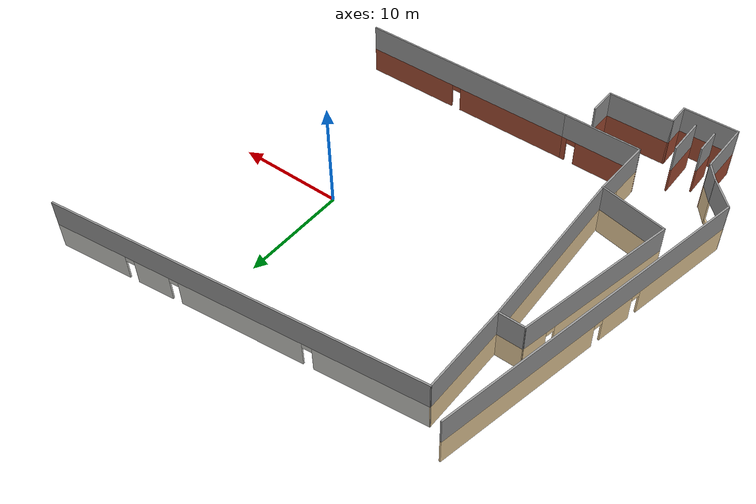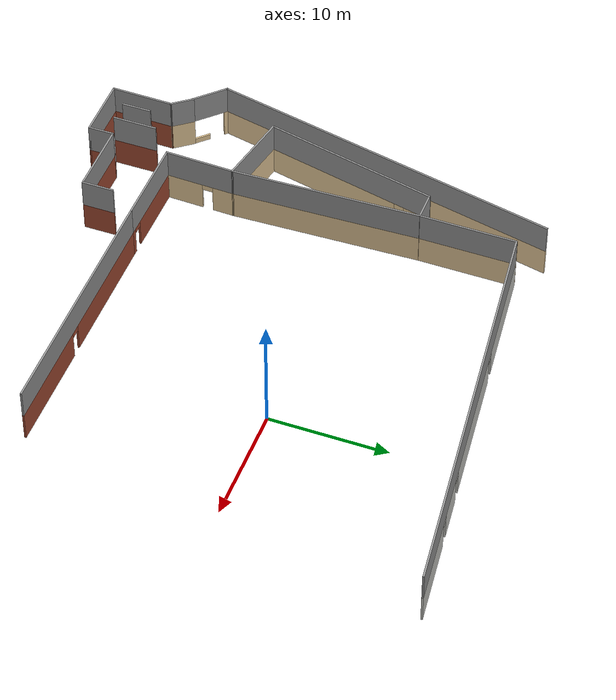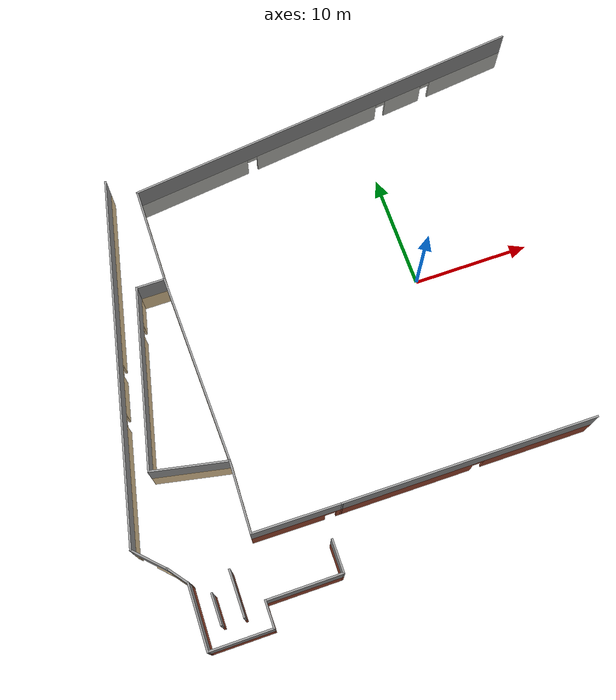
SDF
<sdf version="1.6">
 <model name="FokusFloor2-colour">
  <pose>2.32223 1.2425 0 0 -0 0</pose>
  <link name="Wall_10">
   <pose>-5.39207 14.1564 0 0 -0 -3.02197</pose>
   <visual name="Wall_10_Visual_0">
    <pose>-13.8748 0 1.25 0 -0 0</pose>
    <geometry><box><size>7.02297 0.15 2.5</size></box></geometry>
    <material>
     <script><uri>file://media/materials/scripts/gazebo.material</uri><name>Gazebo/CeilingTiled</name></script>
     <ambient>1 1 1 1</ambient>
    </material>
    <meta><layer>0</layer></meta>
   </visual>
   <collision name="Wall_10_Collision_0">
    <geometry><box><size>7.02297 0.15 2.5</size></box></geometry>
    <pose>-13.8748 0 1.25 0 -0 0</pose>
   </collision>
   <visual name="Wall_10_Visual_1">
    <pose>-7.70986 0 1.25 0 -0 0</pose>
    <geometry><box><size>3.50692 0.15 2.5</size></box></geometry>
    <material>
     <script><uri>file://media/materials/scripts/gazebo.material</uri><name>Gazebo/CeilingTiled</name></script>
     <ambient>1 1 1 1</ambient>
    </material>
    <meta><layer>0</layer></meta>
   </visual>
   <collision name="Wall_10_Collision_1">
    <geometry><box><size>3.50692 0.15 2.5</size></box></geometry>
    <pose>-7.70986 0 1.25 0 -0 0</pose>
   </collision>
   <visual name="Wall_10_Visual_2">
    <pose>0.711653 0 1.25 0 -0 0</pose>
    <geometry><box><size>11.5361 0.15 2.5</size></box></geometry>
    <material>
     <script><uri>file://media/materials/scripts/gazebo.material</uri><name>Gazebo/CeilingTiled</name></script>
     <ambient>1 1 1 1</ambient>
    </material>
    <meta><layer>0</layer></meta>
   </visual>
   <collision name="Wall_10_Collision_2">
    <geometry><box><size>11.5361 0.15 2.5</size></box></geometry>
    <pose>0.711653 0 1.25 0 -0 0</pose>
   </collision>
   <visual name="Wall_10_Visual_3">
    <pose>12.383 0 1.25 0 -0 0</pose>
    <geometry><box><size>10.0066 0.15 2.5</size></box></geometry>
    <material>
     <script><uri>file://media/materials/scripts/gazebo.material</uri><name>Gazebo/CeilingTiled</name></script>
     <ambient>1 1 1 1</ambient>
    </material>
    <meta><layer>0</layer></meta>
   </visual>
   <collision name="Wall_10_Collision_3">
    <geometry><box><size>10.0066 0.15 2.5</size></box></geometry>
    <pose>12.383 0 1.25 0 -0 0</pose>
   </collision>
   <visual name="Wall_10_Visual_4">
    <pose>-9.91332 0 2.25 0 -0 0</pose>
    <geometry><box><size>0.9 0.15 0.5</size></box></geometry>
    <material>
     <script><uri>file://media/materials/scripts/gazebo.material</uri><name>Gazebo/CeilingTiled</name></script>
     <ambient>1 1 1 1</ambient>
    </material>
    <meta><layer>0</layer></meta>
   </visual>
   <collision name="Wall_10_Collision_4">
    <geometry><box><size>0.9 0.15 0.5</size></box></geometry>
    <pose>-9.91332 0 2.25 0 -0 0</pose>
   </collision>
   <visual name="Wall_10_Visual_5">
    <pose>-5.5064 0 2.25 0 -0 0</pose>
    <geometry><box><size>0.9 0.15 0.5</size></box></geometry>
    <material>
     <script><uri>file://media/materials/scripts/gazebo.material</uri><name>Gazebo/CeilingTiled</name></script>
     <ambient>1 1 1 1</ambient>
    </material>
    <meta><layer>0</layer></meta>
   </visual>
   <collision name="Wall_10_Collision_5">
    <geometry><box><size>0.9 0.15 0.5</size></box></geometry>
    <pose>-5.5064 0 2.25 0 -0 0</pose>
   </collision>
   <visual name="Wall_10_Visual_6">
    <pose>6.92971 0 2.25 0 -0 0</pose>
    <geometry><box><size>0.9 0.15 0.5</size></box></geometry>
    <material>
     <script><uri>file://media/materials/scripts/gazebo.material</uri><name>Gazebo/CeilingTiled</name></script>
     <ambient>1 1 1 1</ambient>
    </material>
    <meta><layer>0</layer></meta>
   </visual>
   <collision name="Wall_10_Collision_6">
    <geometry><box><size>0.9 0.15 0.5</size></box></geometry>
    <pose>6.92971 0 2.25 0 -0 0</pose>
   </collision>
  </link>
  <link name="Wall_100">
   <collision name="Wall_100_Collision">
    <geometry><box><size>2.06017 0.15 2.5</size></box></geometry>
    <pose>0 0 1.25 0 -0 0</pose>
   </collision>
   <visual name="Wall_100_Visual">
    <pose>0 0 1.25 0 -0 0</pose>
    <geometry><box><size>2.06017 0.15 2.5</size></box></geometry>
    <material>
     <script><uri>file://media/materials/scripts/gazebo.material</uri><name>Gazebo/Grey</name></script>
     <ambient>1 1 1 1</ambient>
    </material>
    <meta><layer>1</layer></meta>
   </visual>
   <pose>-28.4394 -18.8771 2.5 0 -0 -0.909626</pose>
  </link>
  <link name="Wall_101">
   <collision name="Wall_101_Collision">
    <geometry><box><size>8.22358 0.15 2.5</size></box></geometry>
    <pose>0 0 1.25 0 -0 0</pose>
   </collision>
   <visual name="Wall_101_Visual">
    <pose>0 0 1.25 0 -0 0</pose>
    <geometry><box><size>8.22358 0.15 2.5</size></box></geometry>
    <material>
     <script><uri>file://media/materials/scripts/gazebo.material</uri><name>Gazebo/Grey</name></script>
     <ambient>1 1 1 1</ambient>
    </material>
    <meta><layer>1</layer></meta>
   </visual>
   <pose>-22.6059 8.05384 2.5 0 -0 -1.57731</pose>
  </link>
  <link name="Wall_102">
   <collision name="Wall_102_Collision">
    <geometry><box><size>2.5 0.15 2.5</size></box></geometry>
    <pose>0 0 1.25 0 -0 0</pose>
   </collision>
   <visual name="Wall_102_Visual">
    <pose>0 0 1.25 0 -0 0</pose>
    <geometry><box><size>2.5 0.15 2.5</size></box></geometry>
    <material>
     <script><uri>file://media/materials/scripts/gazebo.material</uri><name>Gazebo/Grey</name></script>
     <ambient>1 1 1 1</ambient>
    </material>
    <meta><layer>1</layer></meta>
   </visual>
   <pose>-23.8072 3.99083 2.5 0 -0 3.14159</pose>
  </link>
  <link name="Wall_103">
   <collision name="Wall_103_Collision">
    <geometry><box><size>15.1732 0.15 2.5</size></box></geometry>
    <pose>0 0 1.25 0 -0 0</pose>
   </collision>
   <visual name="Wall_103_Visual">
    <pose>0 0 1.25 0 -0 0</pose>
    <geometry><box><size>15.1732 0.15 2.5</size></box></geometry>
    <material>
     <script><uri>file://media/materials/scripts/gazebo.material</uri><name>Gazebo/Grey</name></script>
     <ambient>1 1 1 1</ambient>
    </material>
    <meta><layer>1</layer></meta>
   </visual>
   <pose>-26.6296 -3.33792 2.5 0 -0 -1.79189</pose>
  </link>
  <link name="Wall_104">
   <collision name="Wall_104_Collision">
    <geometry><box><size>6.39727 0.15 2.5</size></box></geometry>
    <pose>0 0 1.25 0 -0 0</pose>
   </collision>
   <visual name="Wall_104_Visual">
    <pose>0 0 1.25 0 -0 0</pose>
    <geometry><box><size>6.39727 0.15 2.5</size></box></geometry>
    <material>
     <script><uri>file://media/materials/scripts/gazebo.material</uri><name>Gazebo/Grey</name></script>
     <ambient>1 1 1 1</ambient>
    </material>
    <meta><layer>1</layer></meta>
   </visual>
   <pose>-25.2124 -11.2983 2.5 0 -0 -0.195012</pose>
  </link>
  <link name="Wall_105">
   <collision name="Wall_105_Collision">
    <geometry><box><size>5.95032 0.15 2.5</size></box></geometry>
    <pose>0 0 1.25 0 -0 0</pose>
   </collision>
   <visual name="Wall_105_Visual">
    <pose>0 0 1.25 0 -0 0</pose>
    <geometry><box><size>5.95032 0.15 2.5</size></box></geometry>
    <material>
     <script><uri>file://media/materials/scripts/gazebo.material</uri><name>Gazebo/Grey</name></script>
     <ambient>1 1 1 1</ambient>
    </material>
    <meta><layer>1</layer></meta>
   </visual>
   <pose>-22.2401 -14.776 2.5 0 -0 -1.60254</pose>
  </link>
  <link name="Wall_106">
   <collision name="Wall_106_Collision">
    <geometry><box><size>7.41764 0.15 2.5</size></box></geometry>
    <pose>0 0 1.25 0 -0 0</pose>
   </collision>
   <visual name="Wall_106_Visual">
    <pose>0 0 1.25 0 -0 0</pose>
    <geometry><box><size>7.41764 0.15 2.5</size></box></geometry>
    <material>
     <script><uri>file://media/materials/scripts/gazebo.material</uri><name>Gazebo/Grey</name></script>
     <ambient>1 1 1 1</ambient>
    </material>
    <meta><layer>1</layer></meta>
   </visual>
   <pose>-18.6985 -17.7367 2.5 0 -0 -0.009841</pose>
  </link>
  <link name="Wall_113">
   <collision name="Wall_113_Collision">
    <geometry><box><size>5.31467 0.15 2.5</size></box></geometry>
    <pose>0 0 1.25 0 -0 0</pose>
   </collision>
   <visual name="Wall_113_Visual">
    <pose>0 0 1.25 0 -0 0</pose>
    <geometry><box><size>5.31467 0.15 2.5</size></box></geometry>
    <material>
     <script><uri>file://media/materials/scripts/gazebo.material</uri><name>Gazebo/Grey</name></script>
     <ambient>1 1 1 1</ambient>
    </material>
    <meta><layer>1</layer></meta>
   </visual>
   <pose>-27.8944 -22.2129 2.5 0 -0 -1.58683</pose>
  </link>
  <link name="Wall_114">
   <collision name="Wall_114_Collision">
    <geometry><box><size>5.25 0.15 2.5</size></box></geometry>
    <pose>0 0 1.25 0 -0 0</pose>
   </collision>
   <visual name="Wall_114_Visual">
    <pose>0 0 1.25 0 -0 0</pose>
    <geometry><box><size>5.25 0.15 2.5</size></box></geometry>
    <material>
     <script><uri>file://media/materials/scripts/gazebo.material</uri><name>Gazebo/Grey</name></script>
     <ambient>1 1 1 1</ambient>
    </material>
    <meta><layer>1</layer></meta>
   </visual>
   <pose>-25.3858 -24.7949 2.5 0 -0 0</pose>
  </link>
  <link name="Wall_115">
   <collision name="Wall_115_Collision">
    <geometry><box><size>2.25 0.15 2.5</size></box></geometry>
    <pose>0 0 1.25 0 -0 0</pose>
   </collision>
   <visual name="Wall_115_Visual">
    <pose>0 0 1.25 0 -0 0</pose>
    <geometry><box><size>2.25 0.15 2.5</size></box></geometry>
    <material>
     <script><uri>file://media/materials/scripts/gazebo.material</uri><name>Gazebo/Grey</name></script>
     <ambient>1 1 1 1</ambient>
    </material>
    <meta><layer>1</layer></meta>
   </visual>
   <pose>-22.8358 -23.7449 2.5 0 -0 1.5708</pose>
  </link>
  <link name="Wall_116">
   <collision name="Wall_116_Collision">
    <geometry><box><size>6.29548 0.15 2.5</size></box></geometry>
    <pose>0 0 1.25 0 -0 0</pose>
   </collision>
   <visual name="Wall_116_Visual">
    <pose>0 0 1.25 0 -0 0</pose>
    <geometry><box><size>6.29548 0.15 2.5</size></box></geometry>
    <material>
     <script><uri>file://media/materials/scripts/gazebo.material</uri><name>Gazebo/Grey</name></script>
     <ambient>1 1 1 1</ambient>
    </material>
    <meta><layer>1</layer></meta>
   </visual>
   <pose>-19.7631 -22.6949 2.5 0 -0 0</pose>
  </link>
  <link name="Wall_117">
   <collision name="Wall_117_Collision">
    <geometry><box><size>2.75 0.15 2.5</size></box></geometry>
    <pose>0 0 1.25 0 -0 0</pose>
   </collision>
   <visual name="Wall_117_Visual">
    <pose>0 0 1.25 0 -0 0</pose>
    <geometry><box><size>2.75 0.15 2.5</size></box></geometry>
    <material>
     <script><uri>file://media/materials/scripts/gazebo.material</uri><name>Gazebo/Grey</name></script>
     <ambient>1 1 1 1</ambient>
    </material>
    <meta><layer>1</layer></meta>
   </visual>
   <pose>-16.6903 -21.3949 2.5 0 -0 1.5708</pose>
  </link>
  <link name="Wall_118">
   <collision name="Wall_118_Collision">
    <geometry><box><size>3.75 0.15 2.5</size></box></geometry>
    <pose>0 0 1.25 0 -0 0</pose>
   </collision>
   <visual name="Wall_118_Visual">
    <pose>0 0 1.25 0 -0 0</pose>
    <geometry><box><size>3.75 0.15 2.5</size></box></geometry>
    <material>
     <script><uri>file://media/materials/scripts/gazebo.material</uri><name>Gazebo/Grey</name></script>
     <ambient>1 1 1 1</ambient>
    </material>
    <meta><layer>1</layer></meta>
   </visual>
   <pose>-24.6642 -21.5184 2.5 0 -0 -1.5708</pose>
  </link>
  <link name="Wall_119">
   <collision name="Wall_119_Collision">
    <geometry><box><size>2.5 0.15 2.5</size></box></geometry>
    <pose>0 0 1.25 0 -0 0</pose>
   </collision>
   <visual name="Wall_119_Visual">
    <pose>0 0 1.25 0 -0 0</pose>
    <geometry><box><size>2.5 0.15 2.5</size></box></geometry>
    <material>
     <script><uri>file://media/materials/scripts/gazebo.material</uri><name>Gazebo/Grey</name></script>
     <ambient>1 1 1 1</ambient>
    </material>
    <meta><layer>1</layer></meta>
   </visual>
   <pose>-26.4339 -22.1179 2.5 0 -0 1.5708</pose>
  </link>
  <link name="Wall_124">
   <collision name="Wall_124_Collision">
    <geometry><box><size>16.0255 0.15 2.5</size></box></geometry>
    <pose>0 0 1.25 0 -0 0</pose>
   </collision>
   <visual name="Wall_124_Visual">
    <pose>0 0 1.25 0 -0 0</pose>
    <geometry><box><size>16.0255 0.15 2.5</size></box></geometry>
    <material>
     <script><uri>file://media/materials/scripts/gazebo.material</uri><name>Gazebo/Grey</name></script>
     <ambient>1 1 1 1</ambient>
    </material>
    <meta><layer>1</layer></meta>
   </visual>
   <pose>-22.3901 -3.94322 2.5 0 -0 -1.54029</pose>
  </link>
  <link name="Wall_30">
   <pose>-28.0237 -1.02056 0 0 -0 -1.78183</pose>
   <visual name="Wall_30_Visual_0">
    <pose>-7.65922 0 1.25 0 -0 0</pose>
    <geometry><box><size>15.3295 0.15 2.5</size></box></geometry>
    <material>
     <script><uri>file://media/materials/scripts/gazebo.material</uri><name>Gazebo/Grey</name></script>
     <ambient>0.921569 0.807843 0.615686 1</ambient>
    </material>
    <meta><layer>0</layer></meta>
   </visual>
   <collision name="Wall_30_Collision_0">
    <geometry><box><size>15.3295 0.15 2.5</size></box></geometry>
    <pose>-7.65922 0 1.25 0 -0 0</pose>
   </collision>
   <visual name="Wall_30_Visual_1">
    <pose>2.55878 0 1.25 0 -0 0</pose>
    <geometry><box><size>3.30655 0.15 2.5</size></box></geometry>
    <material>
     <script><uri>file://media/materials/scripts/gazebo.material</uri><name>Gazebo/Grey</name></script>
     <ambient>0.921569 0.807843 0.615686 1</ambient>
    </material>
    <meta><layer>0</layer></meta>
   </visual>
   <collision name="Wall_30_Collision_1">
    <geometry><box><size>3.30655 0.15 2.5</size></box></geometry>
    <pose>2.55878 0 1.25 0 -0 0</pose>
   </collision>
   <visual name="Wall_30_Visual_2">
    <pose>10.218 0 1.25 0 -0 0</pose>
    <geometry><box><size>10.2119 0.15 2.5</size></box></geometry>
    <material>
     <script><uri>file://media/materials/scripts/gazebo.material</uri><name>Gazebo/Grey</name></script>
     <ambient>0.921569 0.807843 0.615686 1</ambient>
    </material>
    <meta><layer>0</layer></meta>
   </visual>
   <collision name="Wall_30_Collision_2">
    <geometry><box><size>10.2119 0.15 2.5</size></box></geometry>
    <pose>10.218 0 1.25 0 -0 0</pose>
   </collision>
   <visual name="Wall_30_Visual_3">
    <pose>0.455508 0 2.25 0 -0 0</pose>
    <geometry><box><size>0.9 0.15 0.5</size></box></geometry>
    <material>
     <script><uri>file://media/materials/scripts/gazebo.material</uri><name>Gazebo/Grey</name></script>
     <ambient>0.921569 0.807843 0.615686 1</ambient>
    </material>
    <meta><layer>0</layer></meta>
   </visual>
   <collision name="Wall_30_Collision_3">
    <geometry><box><size>0.9 0.15 0.5</size></box></geometry>
    <pose>0.455508 0 2.25 0 -0 0</pose>
   </collision>
   <visual name="Wall_30_Visual_4">
    <pose>4.66206 0 2.25 0 -0 0</pose>
    <geometry><box><size>0.9 0.15 0.5</size></box></geometry>
    <material>
     <script><uri>file://media/materials/scripts/gazebo.material</uri><name>Gazebo/Grey</name></script>
     <ambient>0.921569 0.807843 0.615686 1</ambient>
    </material>
    <meta><layer>0</layer></meta>
   </visual>
   <collision name="Wall_30_Collision_4">
    <geometry><box><size>0.9 0.15 0.5</size></box></geometry>
    <pose>4.66206 0 2.25 0 -0 0</pose>
   </collision>
  </link>
  <link name="Wall_32">
   <pose>-30.1219 -17.0575 0 0 -0 -0.785398</pose>
   <visual name="Wall_32_Visual_0">
    <pose>-1.40278 0 1.25 0 -0 0</pose>
    <geometry><box><size>0.444449 0.15 2.5</size></box></geometry>
    <material>
     <script><uri>file://media/materials/scripts/gazebo.material</uri><name>Gazebo/Grey</name></script>
     <ambient>0.921569 0.807843 0.615686 1</ambient>
    </material>
    <meta><layer>0</layer></meta>
   </visual>
   <collision name="Wall_32_Collision_0">
    <geometry><box><size>0.444449 0.15 2.5</size></box></geometry>
    <pose>-1.40278 0 1.25 0 -0 0</pose>
   </collision>
   <visual name="Wall_32_Visual_1">
    <pose>0.862495 0 0.25 0 -0 0</pose>
    <geometry><box><size>1.52501 0.15 0.5</size></box></geometry>
    <material>
     <script><uri>file://media/materials/scripts/gazebo.material</uri><name>Gazebo/Grey</name></script>
     <ambient>0.921569 0.807843 0.615686 1</ambient>
    </material>
    <meta><layer>0</layer></meta>
   </visual>
   <collision name="Wall_32_Collision_1">
    <geometry><box><size>1.52501 0.15 0.5</size></box></geometry>
    <pose>0.862495 0 0.25 0 -0 0</pose>
   </collision>
  </link>
  <link name="Wall_33">
   <collision name="Wall_33_Collision">
    <geometry><box><size>2.06017 0.15 2.5</size></box></geometry>
    <pose>0 0 1.25 0 -0 0</pose>
   </collision>
   <visual name="Wall_33_Visual">
    <pose>0 0 1.25 0 -0 0</pose>
    <geometry><box><size>2.06017 0.15 2.5</size></box></geometry>
    <material>
     <script><uri>file://media/materials/scripts/gazebo.material</uri><name>Gazebo/Grey</name></script>
     <ambient>0.921569 0.807843 0.615686 1</ambient>
    </material>
    <meta><layer>0</layer></meta>
   </visual>
   <pose>-28.4394 -18.8771 0 0 -0 -0.909626</pose>
  </link>
  <link name="Wall_35">
   <collision name="Wall_35_Collision">
    <geometry><box><size>8.22358 0.15 2.5</size></box></geometry>
    <pose>0 0 1.25 0 -0 0</pose>
   </collision>
   <visual name="Wall_35_Visual">
    <pose>0 0 1.25 0 -0 0</pose>
    <geometry><box><size>8.22358 0.15 2.5</size></box></geometry>
    <material>
     <script><uri>file://media/materials/scripts/gazebo.material</uri><name>Gazebo/Grey</name></script>
     <ambient>0.921569 0.807843 0.615686 1</ambient>
    </material>
    <meta><layer>0</layer></meta>
   </visual>
   <pose>-22.6059 8.05384 0 0 -0 -1.57731</pose>
  </link>
  <link name="Wall_36">
   <collision name="Wall_36_Collision">
    <geometry><box><size>2.5 0.15 2.5</size></box></geometry>
    <pose>0 0 1.25 0 -0 0</pose>
   </collision>
   <visual name="Wall_36_Visual">
    <pose>0 0 1.25 0 -0 0</pose>
    <geometry><box><size>2.5 0.15 2.5</size></box></geometry>
    <material>
     <script><uri>file://media/materials/scripts/gazebo.material</uri><name>Gazebo/Grey</name></script>
     <ambient>0.921569 0.807843 0.615686 1</ambient>
    </material>
    <meta><layer>0</layer></meta>
   </visual>
   <pose>-23.8072 3.99083 0 0 -0 3.14159</pose>
  </link>
  <link name="Wall_37">
   <pose>-26.6296 -3.33792 0 0 -0 -1.79189</pose>
   <visual name="Wall_37_Visual_0">
    <pose>-6.37243 0 1.25 0 -0 0</pose>
    <geometry><box><size>2.42836 0.15 2.5</size></box></geometry>
    <material>
     <script><uri>file://media/materials/scripts/gazebo.material</uri><name>Gazebo/Grey</name></script>
     <ambient>0.921569 0.807843 0.615686 1</ambient>
    </material>
    <meta><layer>0</layer></meta>
   </visual>
   <collision name="Wall_37_Collision_0">
    <geometry><box><size>2.42836 0.15 2.5</size></box></geometry>
    <pose>-6.37243 0 1.25 0 -0 0</pose>
   </collision>
   <visual name="Wall_37_Visual_1">
    <pose>1.66418 0 1.25 0 -0 0</pose>
    <geometry><box><size>11.8449 0.15 2.5</size></box></geometry>
    <material>
     <script><uri>file://media/materials/scripts/gazebo.material</uri><name>Gazebo/Grey</name></script>
     <ambient>0.921569 0.807843 0.615686 1</ambient>
    </material>
    <meta><layer>0</layer></meta>
   </visual>
   <collision name="Wall_37_Collision_1">
    <geometry><box><size>11.8449 0.15 2.5</size></box></geometry>
    <pose>1.66418 0 1.25 0 -0 0</pose>
   </collision>
   <visual name="Wall_37_Visual_2">
    <pose>-4.70825 0 2.25 0 -0 0</pose>
    <geometry><box><size>0.9 0.15 0.5</size></box></geometry>
    <material>
     <script><uri>file://media/materials/scripts/gazebo.material</uri><name>Gazebo/Grey</name></script>
     <ambient>0.921569 0.807843 0.615686 1</ambient>
    </material>
    <meta><layer>0</layer></meta>
   </visual>
   <collision name="Wall_37_Collision_2">
    <geometry><box><size>0.9 0.15 0.5</size></box></geometry>
    <pose>-4.70825 0 2.25 0 -0 0</pose>
   </collision>
  </link>
  <link name="Wall_38">
   <collision name="Wall_38_Collision">
    <geometry><box><size>6.39727 0.15 2.5</size></box></geometry>
    <pose>0 0 1.25 0 -0 0</pose>
   </collision>
   <visual name="Wall_38_Visual">
    <pose>0 0 1.25 0 -0 0</pose>
    <geometry><box><size>6.39727 0.15 2.5</size></box></geometry>
    <material>
     <script><uri>file://media/materials/scripts/gazebo.material</uri><name>Gazebo/Grey</name></script>
     <ambient>0.921569 0.807843 0.615686 1</ambient>
    </material>
    <meta><layer>0</layer></meta>
   </visual>
   <pose>-25.2124 -11.2983 0 0 -0 -0.195012</pose>
  </link>
  <link name="Wall_39">
   <pose>-22.2401 -14.776 0 0 -0 -1.60254</pose>
   <visual name="Wall_39_Visual_0">
    <pose>-2.03469 0 1.25 0 -0 0</pose>
    <geometry><box><size>1.88094 0.15 2.5</size></box></geometry>
    <material>
     <script><uri>file://media/materials/scripts/gazebo.material</uri><name>Gazebo/Grey</name></script>
     <ambient>0.921569 0.807843 0.615686 1</ambient>
    </material>
    <meta><layer>0</layer></meta>
   </visual>
   <collision name="Wall_39_Collision_0">
    <geometry><box><size>1.88094 0.15 2.5</size></box></geometry>
    <pose>-2.03469 0 1.25 0 -0 0</pose>
   </collision>
   <visual name="Wall_39_Visual_1">
    <pose>1.39047 0 1.25 0 -0 0</pose>
    <geometry><box><size>3.16938 0.15 2.5</size></box></geometry>
    <material>
     <script><uri>file://media/materials/scripts/gazebo.material</uri><name>Gazebo/Grey</name></script>
     <ambient>0.921569 0.807843 0.615686 1</ambient>
    </material>
    <meta><layer>0</layer></meta>
   </visual>
   <collision name="Wall_39_Collision_1">
    <geometry><box><size>3.16938 0.15 2.5</size></box></geometry>
    <pose>1.39047 0 1.25 0 -0 0</pose>
   </collision>
   <visual name="Wall_39_Visual_2">
    <pose>-0.644222 0 2.25 0 -0 0</pose>
    <geometry><box><size>0.9 0.15 0.5</size></box></geometry>
    <material>
     <script><uri>file://media/materials/scripts/gazebo.material</uri><name>Gazebo/Grey</name></script>
     <ambient>0.921569 0.807843 0.615686 1</ambient>
    </material>
    <meta><layer>0</layer></meta>
   </visual>
   <collision name="Wall_39_Collision_2">
    <geometry><box><size>0.9 0.15 0.5</size></box></geometry>
    <pose>-0.644222 0 2.25 0 -0 0</pose>
   </collision>
  </link>
  <link name="Wall_41">
   <pose>-18.6985 -17.7367 0 0 -0 -0.009841</pose>
   <visual name="Wall_41_Visual_0">
    <pose>-0.709631 0 1.25 0 -0 0</pose>
    <geometry><box><size>5.99838 0.15 2.5</size></box></geometry>
    <material>
     <script><uri>file://media/materials/scripts/gazebo.material</uri><name>Gazebo/Bricks</name></script>
     <ambient>1 1 1 1</ambient>
    </material>
    <meta><layer>0</layer></meta>
   </visual>
   <collision name="Wall_41_Collision_0">
    <geometry><box><size>5.99838 0.15 2.5</size></box></geometry>
    <pose>-0.709631 0 1.25 0 -0 0</pose>
   </collision>
   <visual name="Wall_41_Visual_1">
    <pose>3.44919 0 1.25 0 -0 0</pose>
    <geometry><box><size>0.519262 0.15 2.5</size></box></geometry>
    <material>
     <script><uri>file://media/materials/scripts/gazebo.material</uri><name>Gazebo/Bricks</name></script>
     <ambient>1 1 1 1</ambient>
    </material>
    <meta><layer>0</layer></meta>
   </visual>
   <collision name="Wall_41_Collision_1">
    <geometry><box><size>0.519262 0.15 2.5</size></box></geometry>
    <pose>3.44919 0 1.25 0 -0 0</pose>
   </collision>
   <visual name="Wall_41_Visual_2">
    <pose>2.73956 0 2.25 0 -0 0</pose>
    <geometry><box><size>0.9 0.15 0.5</size></box></geometry>
    <material>
     <script><uri>file://media/materials/scripts/gazebo.material</uri><name>Gazebo/Bricks</name></script>
     <ambient>1 1 1 1</ambient>
    </material>
    <meta><layer>0</layer></meta>
   </visual>
   <collision name="Wall_41_Collision_2">
    <geometry><box><size>0.9 0.15 0.5</size></box></geometry>
    <pose>2.73956 0 2.25 0 -0 0</pose>
   </collision>
  </link>
  <link name="Wall_51">
   <collision name="Wall_51_Collision">
    <geometry><box><size>5.31467 0.15 2.5</size></box></geometry>
    <pose>0 0 1.25 0 -0 0</pose>
   </collision>
   <visual name="Wall_51_Visual">
    <pose>0 0 1.25 0 -0 0</pose>
    <geometry><box><size>5.31467 0.15 2.5</size></box></geometry>
    <material>
     <script><uri>file://media/materials/scripts/gazebo.material</uri><name>Gazebo/Bricks</name></script>
     <ambient>1 1 1 1</ambient>
    </material>
    <meta><layer>0</layer></meta>
   </visual>
   <pose>-27.8944 -22.2129 0 0 -0 -1.58683</pose>
  </link>
  <link name="Wall_52">
   <collision name="Wall_52_Collision">
    <geometry><box><size>5.25 0.15 2.5</size></box></geometry>
    <pose>0 0 1.25 0 -0 0</pose>
   </collision>
   <visual name="Wall_52_Visual">
    <pose>0 0 1.25 0 -0 0</pose>
    <geometry><box><size>5.25 0.15 2.5</size></box></geometry>
    <material>
     <script><uri>file://media/materials/scripts/gazebo.material</uri><name>Gazebo/Bricks</name></script>
     <ambient>1 1 1 1</ambient>
    </material>
    <meta><layer>0</layer></meta>
   </visual>
   <pose>-25.3858 -24.7949 0 0 -0 0</pose>
  </link>
  <link name="Wall_53">
   <collision name="Wall_53_Collision">
    <geometry><box><size>2.25 0.15 2.5</size></box></geometry>
    <pose>0 0 1.25 0 -0 0</pose>
   </collision>
   <visual name="Wall_53_Visual">
    <pose>0 0 1.25 0 -0 0</pose>
    <geometry><box><size>2.25 0.15 2.5</size></box></geometry>
    <material>
     <script><uri>file://media/materials/scripts/gazebo.material</uri><name>Gazebo/Bricks</name></script>
     <ambient>1 1 1 1</ambient>
    </material>
    <meta><layer>0</layer></meta>
   </visual>
   <pose>-22.8358 -23.7449 0 0 -0 1.5708</pose>
  </link>
  <link name="Wall_54">
   <collision name="Wall_54_Collision">
    <geometry><box><size>6.29548 0.15 2.5</size></box></geometry>
    <pose>0 0 1.25 0 -0 0</pose>
   </collision>
   <visual name="Wall_54_Visual">
    <pose>0 0 1.25 0 -0 0</pose>
    <geometry><box><size>6.29548 0.15 2.5</size></box></geometry>
    <material>
     <script><uri>file://media/materials/scripts/gazebo.material</uri><name>Gazebo/Bricks</name></script>
     <ambient>1 1 1 1</ambient>
    </material>
    <meta><layer>0</layer></meta>
   </visual>
   <pose>-19.7631 -22.6949 0 0 -0 0</pose>
  </link>
  <link name="Wall_57">
   <collision name="Wall_57_Collision">
    <geometry><box><size>2.75 0.15 2.5</size></box></geometry>
    <pose>0 0 1.25 0 -0 0</pose>
   </collision>
   <visual name="Wall_57_Visual">
    <pose>0 0 1.25 0 -0 0</pose>
    <geometry><box><size>2.75 0.15 2.5</size></box></geometry>
    <material>
     <script><uri>file://media/materials/scripts/gazebo.material</uri><name>Gazebo/Bricks</name></script>
     <ambient>1 1 1 1</ambient>
    </material>
    <meta><layer>0</layer></meta>
   </visual>
   <pose>-16.6903 -21.3949 0 0 -0 1.5708</pose>
  </link>
  <link name="Wall_6">
   <pose>-4.57407 -17.7988 0 0 -0 -0.002501</pose>
   <visual name="Wall_6_Visual_0">
    <pose>-5.02362 0 1.25 0 -0 0</pose>
    <geometry><box><size>11.1369 0.15 2.5</size></box></geometry>
    <material>
     <script><uri>file://media/materials/scripts/gazebo.material</uri><name>Gazebo/Bricks</name></script>
     <ambient>1 1 1 1</ambient>
    </material>
    <meta><layer>0</layer></meta>
   </visual>
   <collision name="Wall_6_Collision_0">
    <geometry><box><size>11.1369 0.15 2.5</size></box></geometry>
    <pose>-5.02362 0 1.25 0 -0 0</pose>
   </collision>
   <visual name="Wall_6_Visual_1">
    <pose>6.01846 0 1.25 0 -0 0</pose>
    <geometry><box><size>9.14724 0.15 2.5</size></box></geometry>
    <material>
     <script><uri>file://media/materials/scripts/gazebo.material</uri><name>Gazebo/Bricks</name></script>
     <ambient>1 1 1 1</ambient>
    </material>
    <meta><layer>0</layer></meta>
   </visual>
   <collision name="Wall_6_Collision_1">
    <geometry><box><size>9.14724 0.15 2.5</size></box></geometry>
    <pose>6.01846 0 1.25 0 -0 0</pose>
   </collision>
   <visual name="Wall_6_Visual_2">
    <pose>0.994842 0 2.25 0 -0 0</pose>
    <geometry><box><size>0.9 0.15 0.5</size></box></geometry>
    <material>
     <script><uri>file://media/materials/scripts/gazebo.material</uri><name>Gazebo/Bricks</name></script>
     <ambient>1 1 1 1</ambient>
    </material>
    <meta><layer>0</layer></meta>
   </visual>
   <collision name="Wall_6_Collision_2">
    <geometry><box><size>0.9 0.15 0.5</size></box></geometry>
    <pose>0.994842 0 2.25 0 -0 0</pose>
   </collision>
  </link>
  <link name="Wall_61">
   <collision name="Wall_61_Collision">
    <geometry><box><size>3.75 0.15 2.5</size></box></geometry>
    <pose>0 0 1.25 0 -0 0</pose>
   </collision>
   <visual name="Wall_61_Visual">
    <pose>0 0 1.25 0 -0 0</pose>
    <geometry><box><size>3.75 0.15 2.5</size></box></geometry>
    <material>
     <script><uri>file://media/materials/scripts/gazebo.material</uri><name>Gazebo/Bricks</name></script>
     <ambient>1 1 1 1</ambient>
    </material>
    <meta><layer>0</layer></meta>
   </visual>
   <pose>-24.6642 -21.5184 0 0 -0 -1.5708</pose>
  </link>
  <link name="Wall_63">
   <collision name="Wall_63_Collision">
    <geometry><box><size>2.5 0.15 2.5</size></box></geometry>
    <pose>0 0 1.25 0 -0 0</pose>
   </collision>
   <visual name="Wall_63_Visual">
    <pose>0 0 1.25 0 -0 0</pose>
    <geometry><box><size>2.5 0.15 2.5</size></box></geometry>
    <material>
     <script><uri>file://media/materials/scripts/gazebo.material</uri><name>Gazebo/Bricks</name></script>
     <ambient>1 1 1 1</ambient>
    </material>
    <meta><layer>0</layer></meta>
   </visual>
   <pose>-26.4339 -22.1179 0 0 -0 1.5708</pose>
  </link>
  <link name="Wall_72">
   <collision name="Wall_72_Collision">
    <geometry><box><size>16.0255 0.15 2.5</size></box></geometry>
    <pose>0 0 1.25 0 -0 0</pose>
   </collision>
   <visual name="Wall_72_Visual">
    <pose>0 0 1.25 0 -0 0</pose>
    <geometry><box><size>16.0255 0.15 2.5</size></box></geometry>
    <material>
     <script><uri>file://media/materials/scripts/gazebo.material</uri><name>Gazebo/Grey</name></script>
     <ambient>0.921569 0.807843 0.615686 1</ambient>
    </material>
    <meta><layer>0</layer></meta>
   </visual>
   <pose>-22.3901 -3.94322 0 0 -0 -1.54029</pose>
  </link>
  <link name="Wall_84">
   <collision name="Wall_84_Collision">
    <geometry><box><size>21.1842 0.15 2.5</size></box></geometry>
    <pose>0 0 1.25 0 -0 0</pose>
   </collision>
   <visual name="Wall_84_Visual">
    <pose>0 0 1.25 0 -0 0</pose>
    <geometry><box><size>21.1842 0.15 2.5</size></box></geometry>
    <material>
     <script><uri>file://media/materials/scripts/gazebo.material</uri><name>Gazebo/Grey</name></script>
     <ambient>1 1 1 1</ambient>
    </material>
    <meta><layer>1</layer></meta>
   </visual>
   <pose>-4.57407 -17.7988 2.5 0 -0 -0.002501</pose>
  </link>
  <link name="Wall_87">
   <collision name="Wall_87_Collision">
    <geometry><box><size>34.7726 0.15 2.5</size></box></geometry>
    <pose>0 0 1.25 0 -0 0</pose>
   </collision>
   <visual name="Wall_87_Visual">
    <pose>0 0 1.25 0 -0 0</pose>
    <geometry><box><size>34.7726 0.15 2.5</size></box></geometry>
    <material>
     <script><uri>file://media/materials/scripts/gazebo.material</uri><name>Gazebo/Grey</name></script>
     <ambient>1 1 1 1</ambient>
    </material>
    <meta><layer>1</layer></meta>
   </visual>
   <pose>-5.39207 14.1564 2.5 0 -0 -3.02197</pose>
  </link>
  <link name="Wall_98">
   <collision name="Wall_98_Collision">
    <geometry><box><size>30.6479 0.15 2.5</size></box></geometry>
    <pose>0 0 1.25 0 -0 0</pose>
   </collision>
   <visual name="Wall_98_Visual">
    <pose>0 0 1.25 0 -0 0</pose>
    <geometry><box><size>30.6479 0.15 2.5</size></box></geometry>
    <material>
     <script><uri>file://media/materials/scripts/gazebo.material</uri><name>Gazebo/Grey</name></script>
     <ambient>1 1 1 1</ambient>
    </material>
    <meta><layer>1</layer></meta>
   </visual>
   <pose>-28.0237 -1.02056 2.5 0 -0 -1.78183</pose>
  </link>
  <link name="Wall_99">
   <collision name="Wall_99_Collision">
    <geometry><box><size>3.25 0.15 2.5</size></box></geometry>
    <pose>0 0 1.25 0 -0 0</pose>
   </collision>
   <visual name="Wall_99_Visual">
    <pose>0 0 1.25 0 -0 0</pose>
    <geometry><box><size>3.25 0.15 2.5</size></box></geometry>
    <material>
     <script><uri>file://media/materials/scripts/gazebo.material</uri><name>Gazebo/Grey</name></script>
     <ambient>1 1 1 1</ambient>
    </material>
    <meta><layer>1</layer></meta>
   </visual>
   <pose>-30.1219 -17.0575 2.5 0 -0 -0.785398</pose>
  </link>
  <static>1</static>
 </model>
</sdf>
